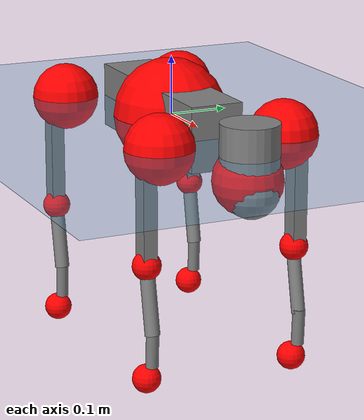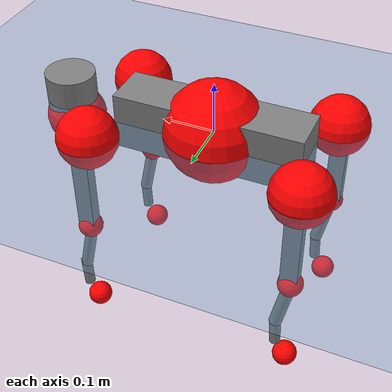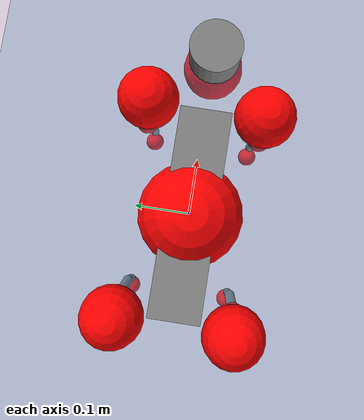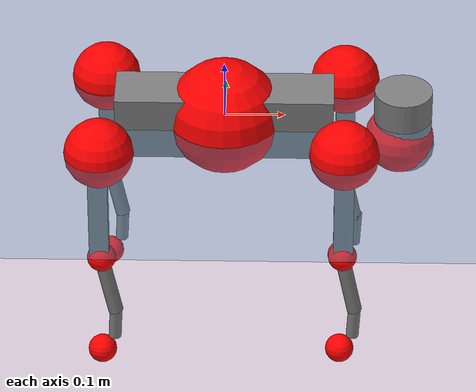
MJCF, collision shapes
<mujoco model="go2">
  <compiler angle="radian" assetdir="assets" balanceinertia="true" inertiafromgeom="false"/>

  <option timestep="0.005" density="1.2" viscosity="2e-05"/>

  <size nkey="1"/>

  <visual>
    <quality shadowsize="8192"/>
    <map shadowclip="0.5"/>
  </visual>

  <default>
    <default class="/">
      <geom contype="0" conaffinity="0" group="1" solref="-1000 -80"/>
      <site size="0.01 0.005 0.005" group="5"/>
      <general forcelimited="true" biastype="affine" gainprm="20" biasprm="0 -20 -0.5"/>
      <default class="go2">
        <joint armature="0.01" damping="0.01" frictionloss="0.2"/>
        <geom condim="1" margin="0.001"/>
        <default class="visual">
          <geom type="mesh" group="2"/>
        </default>
        <default class="collision">
          <geom group="3"/>
          <default class="foot">
            <geom size="0.022 0 0" condim="6" priority="1" friction="0.8 0.02 0.01" solimp="0.015 1 0.022"/>
          </default>
        </default>
        <default class="reward_collision_sphere">
          <geom group="5" rgba="1 0 0 1"/>
        </default>
      </default>
    </default>
  </default>

  <asset>
    <texture type="skybox" colorspace="auto" name="//unnamed_texture_0" builtin="gradient" rgb1="0.95 0.95 0.95" rgb2="0.95 0.95 0.95" width="100" height="600"/>
    <texture type="2d" colorspace="auto" name="texplane" builtin="checker" rgb1="0.345 0.575 0.748" rgb2="0.345 0.575 0.748" markrgb="1 1 1" width="512" height="512"/>
    <material name="MatPlane" class="/" texture="texplane" texuniform="true" texrepeat="2 2" specular="0.9"/>
    <material name="metal" class="/" rgba="0.9 0.95 0.95 1"/>
    <material name="black" class="/" rgba="0 0 0 1"/>
    <material name="white" class="/"/>
    <material name="gray" class="/" rgba="0.671705 0.692426 0.77427 1"/>
    <mesh name="base_0" class="/" file="base_0.obj"/>
    <mesh name="base_1" class="/" file="base_1.obj"/>
    <mesh name="base_2" class="/" file="base_2.obj"/>
    <mesh name="base_3" class="/" file="base_3.obj"/>
    <mesh name="base_4" class="/" file="base_4.obj"/>
    <mesh name="hip_0" class="/" file="hip_0.obj"/>
    <mesh name="hip_1" class="/" file="hip_1.obj"/>
    <mesh name="thigh_0" class="/" file="thigh_0.obj"/>
    <mesh name="thigh_1" class="/" file="thigh_1.obj"/>
    <mesh name="thigh_mirror_0" class="/" file="thigh_mirror_0.obj"/>
    <mesh name="thigh_mirror_1" class="/" file="thigh_mirror_1.obj"/>
    <mesh name="calf_0" class="/" file="calf_0.obj"/>
    <mesh name="calf_1" class="/" file="calf_1.obj"/>
    <mesh name="calf_mirror_0" class="/" file="calf_mirror_0.obj"/>
    <mesh name="calf_mirror_1" class="/" file="calf_mirror_1.obj"/>
    <mesh name="foot" class="/" file="foot.obj"/>
  </asset>

  <worldbody>
    <geom name="floor" class="/" size="100 100 0.125" type="plane" group="0" material="MatPlane"/>
    <light name="toplight_shadow" class="/" pos="0 0 5" dir="0.0990148 0.0990148 -0.990148" type="directional" ambient="0.04 0.04 0.04" diffuse="0.55 0.55 0.55" specular="0.12 0.12 0.12"/>
    <light name="toplight_fill" class="/" pos="0 0 5" dir="0.0990148 0.0990148 -0.990148" type="directional" castshadow="false" ambient="0.04 0.04 0.04" diffuse="0.3 0.3 0.3" specular="0.08 0.08 0.08"/>
    <body name="trunk" childclass="go2" pos="-0.000452689 -0.00211258 0.000499213" quat="0.999999 0.000586178 0.000299061 -0.000841994">
      <inertial pos="0.0205322 -0.0025549 -0.00258362" quat="-0.000341183 0.716176 0.00407607 0.697908" mass="6.14408" diaginertia="0.121979 0.0675211 0.0154704"/>
      <joint name="//unnamed_joint_0" type="free" armature="0" damping="0" frictionloss="0"/>
      <geom name="//unnamed_geom_1" class="visual" material="black" mesh="base_0"/>
      <geom name="//unnamed_geom_2" class="visual" material="black" mesh="base_1"/>
      <geom name="//unnamed_geom_3" class="visual" material="black" mesh="base_2"/>
      <geom name="//unnamed_geom_4" class="visual" material="white" mesh="base_3"/>
      <geom name="//unnamed_geom_5" class="visual" material="gray" mesh="base_4"/>
      <geom name="trunk_1" class="collision" size="0.18103 0.0449927 0.0548574" type="box"/>
      <geom name="trunk_2" class="collision" size="0.0481206 0.0433085" pos="0.296466 0 0.00912814" type="cylinder"/>
      <geom name="trunk_3" class="collision" size="0.0452333" pos="0.304788 0 -0.0547688"/>
      <geom name="//unnamed_geom_9" class="reward_collision_sphere" size="0.0962411"/>
      <geom name="//unnamed_geom_10" class="reward_collision_sphere" size="0.0577447" pos="0.291265 0 -0.0410766"/>
      <site name="imu" pos="-0.0240346 0.000820203 0.0395243" size="0.00962411"/>
      <camera name="track" pos="0 -1.86837 0" quat="0.707107 0.707107 0 0" mode="trackcom"/>
      <camera name="ego_camera" pos="0.324553 0 0.0410766" quat="-0.5 -0.5 0.5 0.5"/>
      <body name="FL_hip" pos="0.201247 0.044677 0.000109532" quat="1 -2.66029e-05 0.000125901 -0.000120974">
        <inertial pos="-0.00552134 -0.000605653 -0.000208894" quat="0.501885 0.498374 0.510352 0.489158" mass="0.600525" diaginertia="0.0010621 0.000414471 0.000298921"/>
        <joint name="FL_hip_joint" pos="0 0 0" axis="0.999951 0.00197298 -0.00970061" stiffness="0.0150053" range="-1.07355 1.07079" armature="0.00937965" damping="0.000958912" frictionloss="0.191247"/>
        <geom name="//unnamed_geom_11" class="visual" material="metal" mesh="hip_0"/>
        <geom name="//unnamed_geom_12" class="visual" material="gray" mesh="hip_1"/>
        <geom name="//unnamed_geom_13" class="collision" size="0.0442709 0.0192482" pos="0 0.074735 0" quat="0.707107 0.707107 0 0" type="cylinder"/>
        <geom name="//unnamed_geom_14" class="reward_collision_sphere" size="0.0577447" pos="0 0.0653931 0"/>
        <body name="FL_thigh" pos="0.00156302 0.090213 -0.000141761" quat="0.999999 -0.000985753 -0.000865894 -5.20153e-05">
          <inertial pos="-0.00448761 -0.018284 -0.0290912" quat="0.829263 0.0838675 -0.0195203 0.552185" mass="1.04485" diaginertia="0.00701006 0.00430071 0.000558555"/>
          <joint name="FL_thigh_joint" pos="0 0 0" axis="-0.0146134 0.999884 0.00424482" stiffness="0.00737544" range="-1.61238 3.436" armature="0.0108216" damping="0.000442999" frictionloss="0.178402"/>
          <geom name="//unnamed_geom_15" class="visual" material="metal" mesh="thigh_0"/>
          <geom name="//unnamed_geom_16" class="visual" material="gray" mesh="thigh_1"/>
          <geom name="//unnamed_geom_17" class="collision" size="0.102497 0.0117895 0.016361" pos="0 0 -0.0972147" quat="0.707107 0 0.707107 0" type="box"/>
          <body name="FL_calf" pos="-0.000958743 -0.00194845 -0.193529" quat="1 -4.25022e-05 6.95185e-05 5.22736e-05">
            <inertial pos="0.00384044 -0.00228262 -0.131136" quat="0.710964 0.00166999 -0.00479805 0.70321" mass="0.209389" diaginertia="0.00177579 0.00105129 3.30832e-05"/>
            <joint name="FL_calf_joint" pos="0 0 0" axis="-0.00209455 0.999927 0.0118883" stiffness="0.0123163" range="-2.67448 -0.784656" armature="0.00889552" damping="0" frictionloss="0.18924"/>
            <geom name="//unnamed_geom_18" class="visual" material="gray" mesh="calf_0"/>
            <geom name="//unnamed_geom_19" class="visual" material="black" mesh="calf_1"/>
            <geom name="FL_calf0" class="collision" size="0.0115489 0.0577447" pos="0.00832186 0 -0.0547688" quat="0.994493 0 -0.104807 0" type="cylinder"/>
            <geom name="//unnamed_geom_21" class="collision" size="0.0105865 0.0312784" pos="0.0208047 0 -0.135096" quat="0.999688 0 0.0249974 0" type="cylinder"/>
            <geom name="//unnamed_geom_22" class="visual" pos="0 0 -0.194429" quat="1 0 0 0" material="black" mesh="foot"/>
            <geom name="FL_foot" class="foot" size="0.0170678" pos="-0.00208047 0 -0.194429"/>
            <geom name="//unnamed_geom_24" class="reward_collision_sphere" size="0.0240603"/>
            <geom name="//unnamed_geom_25" class="reward_collision_sphere" size="0.0240603" pos="-0.00208047 0 -0.194429"/>
            <site name="FL_foot" class="foot" pos="-0.00208047 0 -0.194429" size="0.00962411"/>
          </body>
        </body>
      </body>
      <body name="FR_hip" pos="0.198872 -0.0440852 -0.00156179" quat="1 0.000260549 5.84974e-05 0.000568477">
        <inertial pos="-0.00479448 -0.00169739 0.000192795" quat="0.494625 0.508513 0.490266 0.506359" mass="0.60771" diaginertia="0.00105253 0.000423911 0.000305439"/>
        <joint name="FR_hip_joint" pos="0 0 0" axis="0.999971 -0.00486395 0.00586629" range="-1.06537 1.10492" armature="0.00928435" damping="0.00545016" frictionloss="0.185933"/>
        <geom name="//unnamed_geom_26" class="visual" pos="0 1.86196e-10 7.98633e-09" quat="4.63268e-05 1 0 0" material="metal" mesh="hip_0"/>
        <geom name="//unnamed_geom_27" class="visual" pos="0 3.01846e-10 -1.97533e-08" quat="4.63268e-05 1 0 0" material="gray" mesh="hip_1"/>
        <geom name="//unnamed_geom_28" class="collision" size="0.0442709 0.0192482" pos="0 -0.074735 0" quat="0.707107 0.707107 0 0" type="cylinder"/>
        <geom name="//unnamed_geom_29" class="reward_collision_sphere" size="0.0577447" pos="0 -0.0653931 0"/>
        <body name="FR_thigh" pos="0.000774992 -0.0887481 0.000466741" quat="1 -0.000147494 0.000140515 -0.000187405">
          <inertial pos="-0.0024315 0.0190607 -0.0270891" quat="0.551311 -0.0195745 0.0846099 0.829767" mass="1.0208" diaginertia="0.00707017 0.0041701 0.000558769"/>
          <joint name="FR_thigh_joint" pos="0 0 0" axis="-0.00353187 -0.999986 -0.00381198" stiffness="0.010726" range="-3.50092 1.56277" armature="0.00839921" damping="0.0266324" frictionloss="0.174978"/>
          <geom name="//unnamed_geom_30" class="visual" material="metal" mesh="thigh_mirror_0"/>
          <geom name="//unnamed_geom_31" class="visual" material="gray" mesh="thigh_mirror_1"/>
          <geom name="//unnamed_geom_32" class="collision" size="0.102497 0.0117895 0.016361" pos="0 0 -0.0972147" quat="0.707107 0 0.707107 0" type="box"/>
          <body name="FR_calf" pos="-0.00063566 0.000300588 -0.190874" quat="1 -3.84573e-05 0.000366716 0.000377574">
            <inertial pos="0.00469353 0.00279351 -0.129516" quat="0.702865 -0.0027509 0.00102032 0.711317" mass="0.221931" diaginertia="0.00186903 0.00110515 3.39832e-05"/>
            <joint name="FR_calf_joint" pos="0 0 0" axis="0.00585332 -0.999956 0.00734798" stiffness="0.00104843" range="0.825575 2.70694" armature="0.0101034" damping="0" frictionloss="0.192618"/>
            <geom name="//unnamed_geom_33" class="visual" material="gray" mesh="calf_mirror_0"/>
            <geom name="//unnamed_geom_34" class="visual" material="black" mesh="calf_mirror_1"/>
            <geom name="FR_calf0" class="collision" size="0.0125113 0.0577447" pos="0.0104023 0 -0.0547688" quat="0.995004 0 -0.0998334 0" type="cylinder"/>
            <geom name="//unnamed_geom_36" class="collision" size="0.0105865 0.0312784" pos="0.0208047 0 -0.135096" quat="0.999688 0 0.0249974 0" type="cylinder"/>
            <geom name="//unnamed_geom_37" class="visual" pos="0 0 -0.194429" quat="1 0 0 0" material="black" mesh="foot"/>
            <geom name="FR_foot" class="foot" size="0.0199517" pos="-0.00208047 0 -0.194429"/>
            <geom name="//unnamed_geom_39" class="reward_collision_sphere" size="0.0240603"/>
            <geom name="//unnamed_geom_40" class="reward_collision_sphere" size="0.0240603" pos="-0.00208047 0 -0.194429"/>
            <site name="FR_foot" class="foot" pos="-0.00208047 0 -0.194429" size="0.00962411"/>
          </body>
        </body>
      </body>
      <body name="RL_hip" pos="-0.201635 0.0444116 0.00177922" quat="1 0.000111598 6.11304e-05 -7.44958e-05">
        <inertial pos="0.00461132 0.00315403 0.00206632" quat="0.502811 0.496682 0.497417 0.503055" mass="0.584658" diaginertia="0.00108903 0.000417807 0.000309315"/>
        <joint name="RL_hip_joint" pos="0 0 0" axis="-0.999922 0.00988632 -0.00767802" stiffness="0.0128654" range="-0.993946 1.04414" armature="0.0101303" damping="0.0115207" frictionloss="0.216916"/>
        <geom name="//unnamed_geom_41" class="visual" pos="-1.11002e-09 0 -2.1759e-07" quat="4.63268e-05 0 1 0" material="metal" mesh="hip_0"/>
        <geom name="//unnamed_geom_42" class="visual" pos="-1.79948e-09 0 -1.92971e-07" quat="4.63268e-05 0 1 0" material="gray" mesh="hip_1"/>
        <geom name="//unnamed_geom_43" class="collision" size="0.0442709 0.0192482" pos="0 0.074735 0" quat="0.707107 0.707107 0 0" type="cylinder"/>
        <geom name="//unnamed_geom_44" class="reward_collision_sphere" size="0.0577447" pos="0 0.0653931 0"/>
        <body name="RL_thigh" pos="-0.00022238 0.0881412 0.00214501" quat="0.999999 -0.00054169 0.000819614 -0.00100655">
          <inertial pos="-0.00386748 -0.0183867 -0.0297294" quat="0.827623 0.0745318 -0.0145303 0.556124" mass="0.990581" diaginertia="0.00710205 0.00422358 0.000574558"/>
          <joint name="RL_thigh_joint" pos="0 0 0" axis="-0.00995996 0.999949 -0.00187282" stiffness="0.00532269" range="-0.506302 4.53067" armature="0.010628" damping="0.0227234" frictionloss="0.178515"/>
          <geom name="//unnamed_geom_45" class="visual" material="metal" mesh="thigh_0"/>
          <geom name="//unnamed_geom_46" class="visual" material="gray" mesh="thigh_1"/>
          <geom name="//unnamed_geom_47" class="collision" size="0.102497 0.0117895 0.016361" pos="0 0 -0.0972147" quat="0.707107 0 0.707107 0" type="box"/>
          <body name="RL_calf" pos="-0.00176181 -0.000245621 -0.19225" quat="1 -0.000500097 1.88888e-05 -0.000530982">
            <inertial pos="0.00709867 0.00222707 -0.128431" quat="0.710633 0.0014582 -0.00444677 0.703548" mass="0.213783" diaginertia="0.00173909 0.000996813 3.21726e-05"/>
            <joint name="RL_calf_joint" pos="0 0 0" axis="-0.0161502 0.999846 0.00692066" stiffness="0.0122452" range="-2.67035 -0.830901" armature="0.0108366" damping="0.00915334" frictionloss="0.17374"/>
            <geom name="//unnamed_geom_48" class="visual" material="gray" mesh="calf_0"/>
            <geom name="//unnamed_geom_49" class="visual" material="black" mesh="calf_1"/>
            <geom name="RL_calf0" class="collision" size="0.0125113 0.0577447" pos="0.0104023 0 -0.0547688" quat="0.995004 0 -0.0998334 0" type="cylinder"/>
            <geom name="//unnamed_geom_51" class="collision" size="0.0105865 0.0312784" pos="0.0208047 0 -0.135096" quat="0.999688 0 0.0249974 0" type="cylinder"/>
            <geom name="//unnamed_geom_52" class="visual" pos="0 0 -0.194429" quat="1 0 0 0" material="black" mesh="foot"/>
            <geom name="RL_foot" class="foot" size="0.0182823" pos="-0.00208047 0 -0.194429"/>
            <geom name="//unnamed_geom_54" class="reward_collision_sphere" size="0.0240603"/>
            <geom name="//unnamed_geom_55" class="reward_collision_sphere" size="0.0240603" pos="-0.00208047 0 -0.194429"/>
            <site name="RL_foot" class="foot" pos="-0.00208047 0 -0.194429" size="0.00962411"/>
          </body>
        </body>
      </body>
      <body name="RR_hip" pos="-0.203706 -0.0446466 -0.00204939" quat="0.999999 0.000398249 0.000895844 -0.0005932">
        <inertial pos="0.00552931 -0.00124207 0.000122043" quat="0.49911 0.496641 0.499284 0.504928" mass="0.595205" diaginertia="0.00106122 0.000415797 0.000308895"/>
        <joint name="RR_hip_joint" pos="0 0 0" axis="-1 -3.59916e-07 -8.12858e-06" stiffness="0.0104078" range="-1.02507 1.08966" armature="0.010952" damping="0.00787206" frictionloss="0.209716"/>
        <geom name="//unnamed_geom_56" class="visual" pos="1.10635e-09 1.86196e-10 -2.25576e-07" quat="2.14617e-09 4.63268e-05 4.63268e-05 -1" material="metal" mesh="hip_0"/>
        <geom name="//unnamed_geom_57" class="visual" pos="1.80856e-09 3.01846e-10 -1.73218e-07" quat="2.14617e-09 4.63268e-05 4.63268e-05 -1" material="gray" mesh="hip_1"/>
        <geom name="//unnamed_geom_58" class="collision" size="0.0442709 0.0192482" pos="0 -0.074735 0" quat="0.707107 0.707107 0 0" type="cylinder"/>
        <geom name="//unnamed_geom_59" class="reward_collision_sphere" size="0.0577447" pos="0 -0.0653931 0"/>
        <body name="RR_thigh" pos="-0.00168003 -0.0872579 -0.00202847" quat="1 -1.00398e-05 1.06875e-05 -4.87007e-05">
          <inertial pos="-0.00402789 0.0184716 -0.0304616" quat="0.548916 -0.0174162 0.0824175 0.831622" mass="1.00694" diaginertia="0.00721273 0.00413732 0.000535955"/>
          <joint name="RR_thigh_joint" pos="0 0 0" axis="0.0047926 -0.999987 0.00158405" stiffness="0.0107224" range="-4.53356 0.573615" armature="0.00836741" damping="0.0250617" frictionloss="0.193128"/>
          <geom name="//unnamed_geom_60" class="visual" material="metal" mesh="thigh_mirror_0"/>
          <geom name="//unnamed_geom_61" class="visual" material="gray" mesh="thigh_mirror_1"/>
          <geom name="//unnamed_geom_62" class="collision" size="0.102497 0.0117895 0.016361" pos="0 0 -0.0972147" quat="0.707107 0 0.707107 0" type="box"/>
          <body name="RR_calf" pos="0.00320453 -3.94487e-05 -0.195434" quat="1 0.000189292 0.000284106 0.000121962">
            <inertial pos="0.00501049 -0.000106403 -0.128714" quat="0.703406 -0.00431771 0.00131734 0.710774" mass="0.2207" diaginertia="0.0017988 0.0010533 3.38497e-05"/>
            <joint name="RR_calf_joint" pos="0 0 0" axis="-0.00204094 -0.999975 0.00683152" range="0.891162 2.74431" armature="0.0097935" damping="0.0159367" frictionloss="0.205872"/>
            <geom name="//unnamed_geom_63" class="visual" material="gray" mesh="calf_mirror_0"/>
            <geom name="//unnamed_geom_64" class="visual" material="black" mesh="calf_mirror_1"/>
            <geom name="RR_calf0" class="collision" size="0.0125113 0.0577447" pos="0.0104023 0 -0.0547688" quat="0.995004 0 -0.0998334 0" type="cylinder"/>
            <geom name="//unnamed_geom_66" class="collision" size="0.0105865 0.0312784" pos="0.0208047 0 -0.135096" quat="0.999688 0 0.0249974 0" type="cylinder"/>
            <geom name="//unnamed_geom_67" class="visual" pos="0 0 -0.194429" quat="1 0 0 0" material="black" mesh="foot"/>
            <geom name="RR_foot" class="foot" size="0.0238898" pos="-0.00208047 0 -0.194429"/>
            <geom name="//unnamed_geom_69" class="reward_collision_sphere" size="0.0240603"/>
            <geom name="//unnamed_geom_70" class="reward_collision_sphere" size="0.0240603" pos="-0.00208047 0 -0.194429"/>
            <site name="RR_foot" class="foot" pos="-0.00208047 0 -0.194429" size="0.00962411"/>
          </body>
        </body>
      </body>
    </body>
  </worldbody>

  <contact>
    <pair class="/" geom1="floor" geom2="FL_foot" name="//unnamed_contact_0"/>
    <pair class="/" geom1="floor" geom2="FR_foot" name="//unnamed_contact_1"/>
    <pair class="/" geom1="floor" geom2="RL_foot" name="//unnamed_contact_2"/>
    <pair class="/" geom1="floor" geom2="RR_foot" name="//unnamed_contact_3"/>
  </contact>

  <actuator>
    <general name="FL_hip" class="/" joint="FL_hip_joint" forcerange="-23.461 23.461" gainprm="19.283" biasprm="0 -19.283 -0.484336"/>
    <general name="FL_thigh" class="/" joint="FL_thigh_joint" forcerange="-22.9864 22.9864" gainprm="19.283" biasprm="0 -19.283 -0.484336"/>
    <general name="FL_calf" class="/" joint="FL_calf_joint" forcerange="-44.1247 44.1247" gainprm="19.283" biasprm="0 -19.283 -0.484336"/>
    <general name="FR_hip" class="/" joint="FR_hip_joint" forcerange="-21.8118 21.8118" gainprm="19.283" biasprm="0 -19.283 -0.484336"/>
    <general name="FR_thigh" class="/" joint="FR_thigh_joint" forcerange="-22.3614 22.3614" gainprm="19.283" biasprm="0 -19.283 -0.484336"/>
    <general name="FR_calf" class="/" joint="FR_calf_joint" forcerange="-39.45 39.45" gainprm="19.283" biasprm="0 -19.283 -0.484336"/>
    <general name="RL_hip" class="/" joint="RL_hip_joint" forcerange="-23.0703 23.0703" gainprm="19.283" biasprm="0 -19.283 -0.484336"/>
    <general name="RL_thigh" class="/" joint="RL_thigh_joint" forcerange="-22.364 22.364" gainprm="19.283" biasprm="0 -19.283 -0.484336"/>
    <general name="RL_calf" class="/" joint="RL_calf_joint" forcerange="-42.8022 42.8022" gainprm="19.283" biasprm="0 -19.283 -0.484336"/>
    <general name="RR_hip" class="/" joint="RR_hip_joint" forcerange="-21.9969 21.9969" gainprm="19.283" biasprm="0 -19.283 -0.484336"/>
    <general name="RR_thigh" class="/" joint="RR_thigh_joint" forcerange="-22.7968 22.7968" gainprm="19.283" biasprm="0 -19.283 -0.484336"/>
    <general name="RR_calf" class="/" joint="RR_calf_joint" forcerange="-48.2667 48.2667" gainprm="19.283" biasprm="0 -19.283 -0.484336"/>
  </actuator>

  <sensor>
    <gyro site="imu" name="imu_angular_velocity"/>
    <velocimeter site="imu" name="imu_linear_velocity"/>
    <framelinvel objtype="site" objname="FL_foot" name="FL_foot_global_linear_velocity"/>
    <framelinvel objtype="site" objname="FR_foot" name="FR_foot_global_linear_velocity"/>
    <framelinvel objtype="site" objname="RL_foot" name="RL_foot_global_linear_velocity"/>
    <framelinvel objtype="site" objname="RR_foot" name="RR_foot_global_linear_velocity"/>
  </sensor>

  <keyframe>
    <key name="home" qpos="0 0 0.325 1 0 0 0 0.1 0.8 -1.5 -0.1 -0.8 1.5 -0.1 0.8 -1.5 0.1 -0.8 1.5"/>
  </keyframe>
</mujoco>
